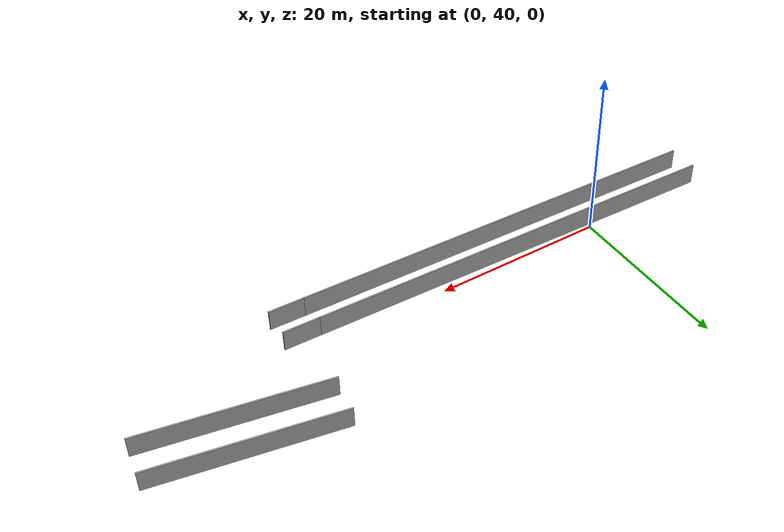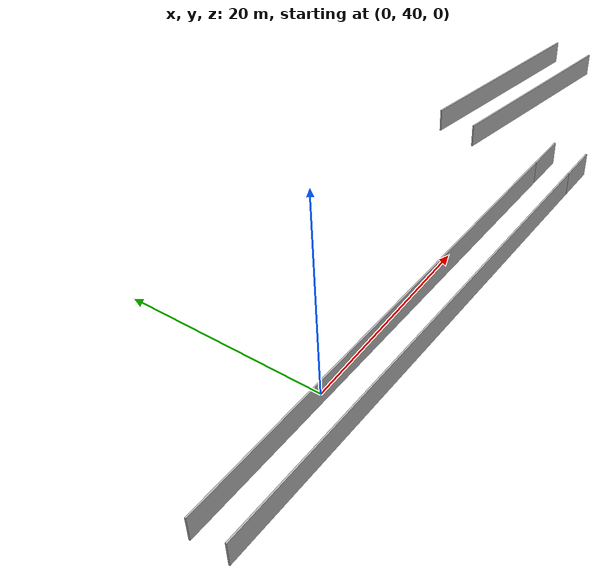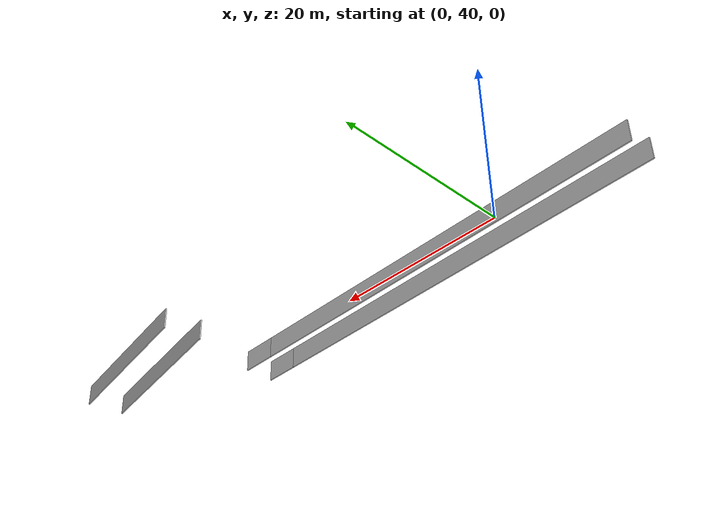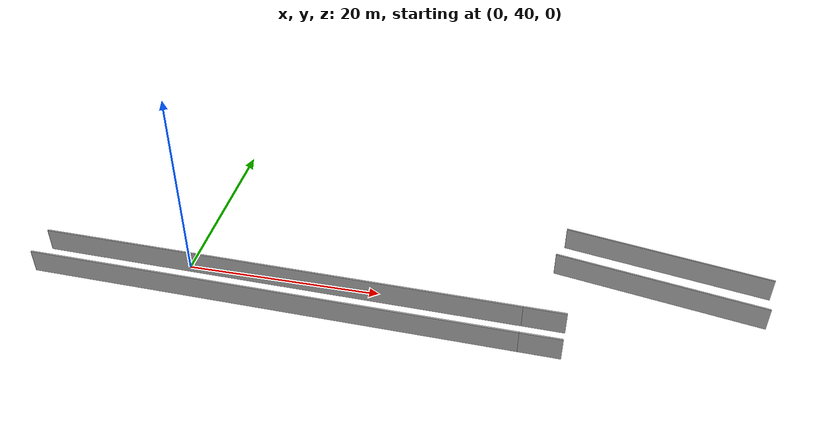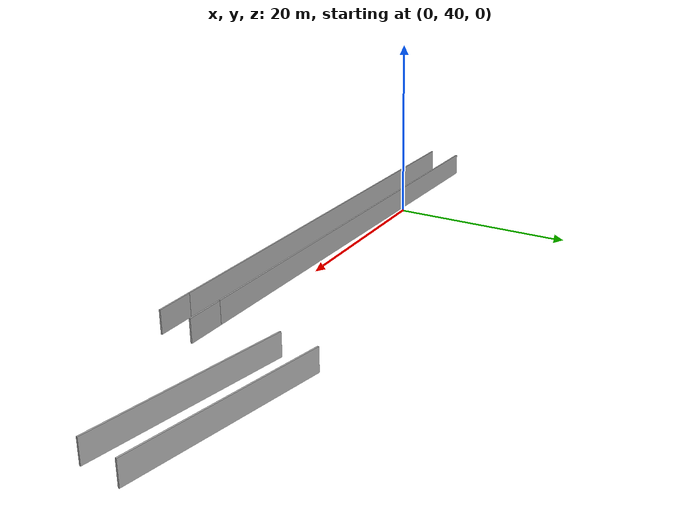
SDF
<?xml version="1.0" ?>
<sdf version="1.6">
  <model name="sps_3102">
    <pose frame="">0 0 0 0 -0 0</pose>
    <static>1</static>
    <self_collide>0</self_collide>
    <allow_auto_disable>0</allow_auto_disable>
    <link name="Wall54">
      <kinematic>0</kinematic>
      <gravity>1</gravity>
      <self_collide>0</self_collide>
      <collision name="collision">
        <geometry>
          <box>
            <size>21.0271 0.15 2.5</size>
          </box>
        </geometry>
        <pose frame="">0 0 0 0 -0 0</pose>
      </collision>
      <visual name="visual">
        <geometry>
          <box>
            <size>21.0271 0.15 2.5</size>
          </box>
        </geometry>
        <pose frame="">0 0 0 0 -0 0</pose>
        <cast_shadows>1</cast_shadows>
        <transparency>0.0</transparency>
      </visual>
      <pose frame="">47.2691 44.9379 1.25 0 0 -0.189984</pose>
    </link>
    <link name="Wall241">
      <kinematic>0</kinematic>
      <gravity>1</gravity>
      <self_collide>0</self_collide>
      <collision name="collision">
        <geometry>
          <box>
            <size>20.976 0.15 2.5</size>
          </box>
        </geometry>
        <pose frame="">0 0 0 0 -0 0</pose>
      </collision>
      <visual name="visual">
        <geometry>
          <box>
            <size>20.976 0.15 2.5</size>
          </box>
        </geometry>
        <pose frame="">0 0 0 0 -0 0</pose>
        <cast_shadows>1</cast_shadows>
        <transparency>0.0</transparency>
      </visual>
      <pose frame="">48.0431 49.269 1.25 0 -0 2.9516</pose>
    </link>
    <link name="Wall456">
      <kinematic>0</kinematic>
      <gravity>1</gravity>
      <self_collide>0</self_collide>
      <collision name="collision">
        <geometry>
          <box>
            <size>4.10939 0.15 2.5</size>
          </box>
        </geometry>
        <pose frame="">0 0 0 0 -0 0</pose>
      </collision>
      <visual name="visual">
        <geometry>
          <box>
            <size>4.10939 0.15 2.5</size>
          </box>
        </geometry>
        <pose frame="">0 0 0 0 -0 0</pose>
        <cast_shadows>1</cast_shadows>
        <transparency>0.0</transparency>
      </visual>
      <pose frame="">36.5235 34.9709 1.25 0 -0 3.11591</pose>
    </link>
    <link name="Wall457">
      <kinematic>0</kinematic>
      <gravity>1</gravity>
      <self_collide>0</self_collide>
      <collision name="collision">
        <geometry>
          <box>
            <size>50.0165 0.15 2.5</size>
          </box>
        </geometry>
        <pose frame="">0 0 0 0 -0 0</pose>
      </collision>
      <visual name="visual">
        <geometry>
          <box>
            <size>50.0165 0.15 2.5</size>
          </box>
        </geometry>
        <pose frame="">0 0 0 0 -0 0</pose>
        <cast_shadows>1</cast_shadows>
        <transparency>0.0</transparency>
      </visual>
      <pose frame="">9.46944 35.6658 1.25 0 -0 3.11591</pose>
    </link>
    <link name="Wall468">
      <kinematic>0</kinematic>
      <gravity>1</gravity>
      <self_collide>0</self_collide>
      <collision name="collision">
        <geometry>
          <box>
            <size>50.0165 0.15 2.5</size>
          </box>
        </geometry>
        <pose frame="">0 0 0 0 -0 0</pose>
      </collision>
      <visual name="visual">
        <geometry>
          <box>
            <size>50.0165 0.15 2.5</size>
          </box>
        </geometry>
        <pose frame="">0 0 0 0 -0 0</pose>
        <cast_shadows>1</cast_shadows>
        <transparency>0.0</transparency>
      </visual>
      <pose frame="">9.46944 39.1666 1.25 0 0 -0.0256802</pose>
    </link>
    <link name="Wall469">
      <kinematic>0</kinematic>
      <gravity>1</gravity>
      <self_collide>0</self_collide>
      <collision name="collision">
        <geometry>
          <box>
            <size>4.2376 0.15 2.5</size>
          </box>
        </geometry>
        <pose frame="">0 0 0 0 -0 0</pose>
      </collision>
      <visual name="visual">
        <geometry>
          <box>
            <size>4.2376 0.15 2.5</size>
          </box>
        </geometry>
        <pose frame="">0 0 0 0 -0 0</pose>
        <cast_shadows>1</cast_shadows>
        <transparency>0.0</transparency>
      </visual>
      <pose frame="">36.5875 38.4701 1.25 0 0 -0.0256802</pose>
    </link>
  </model>
</sdf>
